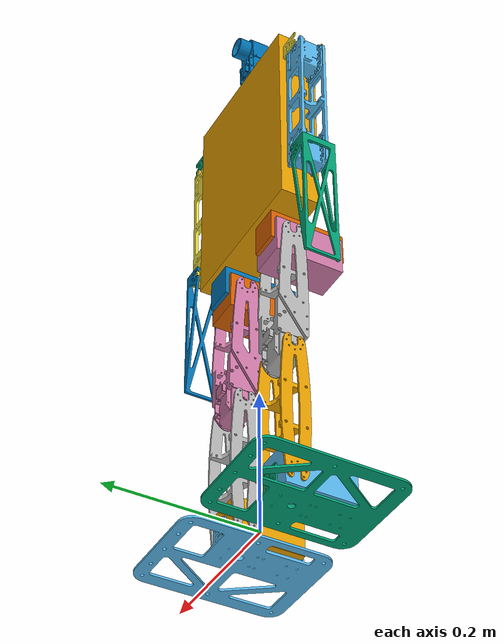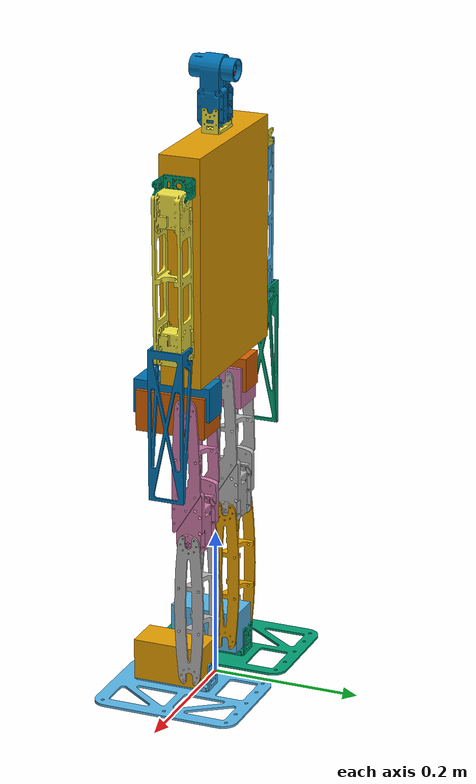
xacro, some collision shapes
<?xml version="1.0" ?>
<robot name="BogoBot" xmlns:xacro="http://www.ros.org/wiki/xacro">
    <xacro:include filename="$(find humanoide_gazebo)/urdf/material.xacro" />
    <xacro:include filename="$(find humanoide_gazebo)/urdf/parameters.xacro" />
    <xacro:include filename="$(find humanoide_gazebo)/urdf/humanoide_meshes.xacro"/>
    <xacro:include filename="$(find humanoide_gazebo)/urdf/motores.xacro" />
    <!--Piezas-->

    <!--Link Torso-->
    <xacro:base_link name="link_torso" x = "0" y = "0" z = "0.59" r = "0" p = "0" yaw = "${PI/2}"
    x_vis = "0.0" y_vis = "0.11" z_vis = "0.44" mesh = "${torax}"/>

    <!--Link Brazo izquierdo-->
    <xacro:brazo name="link_brazo_izquierdo" x = "0" y = "0" z = "-0.105" r = "0.185" p = "0" yaw = "-${PI/2}"
    x_vis = "0.13" y_vis = "0.1735" z_vis = "0" mesh = "${bicep}"/>
    <!--Link palma izquierdo-->
    <xacro:palma name="link_palma_izquierdo" x = "0" y = "0" z = "-0.09" r = "${PI/2}" p = "0" yaw = "${-PI/2}"
     x_vis = "0.005" y_vis = "0.0" z_vis = "-0.02" mesh = "${palma}"/>
    <!--Link Brazo derecho-->
    <xacro:brazo name="link_brazo_derecho" x = "0" y = "0" z = "-0.105" r = "0.185" p = "0" yaw = "${PI/2}"
    x_vis = "-0.13" y_vis = "-0.1735" z_vis = "0" mesh = "${bicep}"/>
    <!--Link palma derecho-->
    <xacro:palma name="link_palma_derecho" x = "0" y = "0" z = "-0.09" r = "${PI/2}" p = "0" yaw = "${PI/2}"
     x_vis = "-0.005" y_vis = "0.0" z_vis = "-0.02" mesh = "${palma}"/>

    <!--Link metal_pierna_izquierda-->
    <xacro:metal_pierna name="link_metal_pierna_izquierda" x = "0" y = "-0.02625" z = "-0.0325" r = "0" p = "0" yaw = "0"/>
    <!--Link servos_pierna_izquierda-->
    <xacro:servos_muslo name="link_servos_pierna_izquierda" x = "0" y = "0" z = "-0.02" r = "0" p = "0" yaw = "0"/>
    <!--Link muslo_pierna_izquierda-->
    <xacro:pieza_pierna_sup name="link_muslo_pierna_izquierda" x = "0" y = "0" z = "-0.11" r = "0.13" p = "-0.13" yaw = "${-PI/2}"
    x_vis = "-0.0775" y_vis = "-0.0075" z_vis = "-0.565" mesh = "${muslo}"/>
    <!--Link rodilla_pierna_izquierda-->
    <xacro:pieza_pierna_inf name="link_rodilla_pierna_izquierda" x = "0" y = "0" z = "-0.09" r = "0" p = "0" yaw = "${-PI/2}"
    x_vis = "-0.1375" y_vis = "0.007" z_vis = "-0.22" mesh = "${pantorrilla}"/>
    <!--Link servos_tob_pierna_izquierda-->
    <xacro:servos_muslo name="link_servos_tob_pierna_izquierda" x = "0" y = "-0.02625" z = "-0.02" r = "0" p = "0" yaw = "0"/>
    <!--Link pie izq-->
    <xacro:pie name="link_pie_izq" x = "-0.03" y = "-0.025" z = "-0.03" x_in = "-0.03" y_in = "-0.025" z_in = "-0.03" r = "0" p = "0" yaw = "${PI/2}"
    x_vis = "0" y_vis = "-0.05125" z_vis = "-0.03" mesh = "${pie_izq}"/>
    <!--Link metal_hombro_izq-->
    <xacro:hombro name="link_hombro_izq" x = "-0.015" y = "0.0" z = "0.0" x_in = "-0.015" y_in = "0.0" z_in = "0.0"  r = "0" p = "0" yaw = "${-PI/2}"
    x_vis = "0.095" y_vis = "0.1735" z_vis = "0.0" mesh = "${hombro}"/>

    <!--Link metal_pierna_derecha-->
    <xacro:metal_pierna name="link_metal_pierna_derecha" x = "0" y = "-0.02625" z = "-0.0325" r = "0" p = "0" yaw = "0"/>
    <!--Link servos_pierna_derecha-->
    <xacro:servos_muslo name="link_servos_pierna_derecha" x = "0" y = "0" z = "-0.02" r = "0" p = "0" yaw = "0"/>
    <!--Link muslo_pierna_derecha-->
    <xacro:pieza_pierna_sup name="link_muslo_pierna_derecha" x = "0" y = "0" z = "-0.11" r = "0.13" p = "-0.13" yaw = "${-PI/2}"
    x_vis = "-0.0775" y_vis = "-0.0075" z_vis = "-0.565" mesh = "${muslo}"/>
    <!--Link rodilla_pierna_derecha-->
    <xacro:pieza_pierna_inf name="link_rodilla_pierna_derecha" x = "0" y = "0" z = "-0.09" r = "0" p = "0" yaw = "${-PI/2}"
     x_vis = "-0.1375" y_vis = "0.007" z_vis = "-0.22" mesh = "${pantorrilla}"/>
    <!--Link servos_tob_pierna_derecha-->
    <xacro:servos_muslo name="link_servos_tob_pierna_derecha" x = "0" y = "-0.02625" z = "-0.02" r = "0" p = "0" yaw = "0"/>
    <!--Link pie der-->
    <xacro:pie name="link_pie_der" x = "0.03" y = "-0.025" z = "-0.03" x_in = "0.03" y_in = "-0.025" z_in = "-0.03" r = "0" p = "0" yaw = "${PI/2}"
    x_vis = "0" y_vis = "-0.05125" z_vis = "-0.03" mesh = "${pie_der}"/>
    <!--Link metal_hombro_der-->
    <xacro:hombro name="link_hombro_der" x = "0.015" y = "0.0" z = "0.0" x_in = "0.015" y_in = "0.0" z_in = "0.0" r = "0" p = "0" yaw = "${PI/2}"
    x_vis = "-0.095" y_vis = "-0.1735" z_vis = "0.0" mesh = "${hombro}"/>

    <!--Link cuello-->
    <xacro:cuello name="link_cuello" x = "0.0" y = "0.0" z = "0.0" r = "${-PI/2}" p = "0" yaw = "0"
    x_vis = "-0.175" y_vis = "0" z_vis = "-0.1" mesh = "${hombro}"/>
    <!--Link cabeza-->
    <xacro:cabeza name="link_cabeza" x = "0.0" y = "0.0" z = "0.01" r = "0" p = "${(-PI/4)-0.2}" yaw = "${PI/2}"
    x_vis = "0" y_vis = "0.35" z_vis = "-0.085" mesh = "${cabeza}"/>

    <!--joints-->
    <!--Joint Torso - cuello-->
    <xacro:joint_revoluta name="q19"
     x = "0.0" y = "0.0" z = "0.75" parent = "link_torso"
     gx = "0" gy = "0" gz = "1"
     child = "link_cuello" effort = "2.5" velocity = "5.76"/>
     <!--Joint cuello - cabeza-->
    <xacro:joint_revoluta name="q20"
     x = "0.0" y = "0.0" z = "0.02" parent = "link_cuello"
     gx = "-1" gy = "0" gz = "0"
     child = "link_cabeza" effort = "2.5" velocity = "5.76"/>

    <!--Joint Torso - hombro izquierdo-->
    <xacro:joint_revoluta name="q13"
     x = "-0.11" y = "0.0" z = "0.7" parent = "link_torso"
     gx = "-1" gy = "0" gz = "0"
     child = "link_hombro_izq" effort = "2.5" velocity = "5.76"/>
    <!--joint hombro izquierdo - Brazo izquierdo-->
    <xacro:joint_revoluta name="q14"
     x = "-0.03" y = "0.0" z = "0.01" parent = "link_hombro_izq"
     gx = "0" gy = "-1" gz = "0"
     child = "link_brazo_izquierdo" effort = "2.5" velocity = "5.76"/>
     <!--joint Brazo izquierdo - palmal izquierdo-->
    <xacro:joint_revoluta name="q15"
     x = "0.0" y = "0.0" z = "-0.2" parent = "link_brazo_izquierdo"
     gx = "0" gy = "1" gz = "0"
     child = "link_palma_izquierdo" effort = "2.5" velocity = "5.76"/>

    <!--Joint Torso - hombro derecho-->
    <xacro:joint_revoluta name="q16"
     x = "0.11" y = "0.0" z = "0.7" parent = "link_torso"
     gx = "1" gy = "0" gz = "0"
     child = "link_hombro_der" effort = "2.5" velocity = "5.76"/>
    <!--joint hombro derecho - Brazo derecho-->
    <xacro:joint_revoluta name="q17"
     x = "0.03" y = "0.0" z = "0.01" parent = "link_hombro_der"
     gx = "0" gy = "-1" gz = "0"
     child = "link_brazo_derecho" effort = "2.5" velocity = "5.76"/>
     <!--joint Brazo derecho - palma derecho-->
    <xacro:joint_revoluta name="q18"
     x = "0.0" y = "0.0" z = "-0.2" parent = "link_brazo_derecho"
     gx = "0" gy = "1" gz = "0"
     child = "link_palma_derecho" effort = "2.5" velocity = "5.76"/>

    <!--Joint Torso - metal pierna izquierda X-->
    <joint name="q6" type="fixed">
        <origin rpy="0 0 0" xyz="-0.06 0.0 0.44" />
        <child link="link_metal_pierna_izquierda" />
        <parent link="link_torso" />
        <limit effort="8.4" lower="0" upper="${2*PI}" velocity="5.76"/>
    </joint>
    <!--Joint metal pierna izquierdo - servos pierna izquierda X-->
    <xacro:joint_revoluta name="q5"
     x = "0.0" y = "-0.02625" z = "-0.03" parent = "link_metal_pierna_izquierda"
     gx = "0" gy = "1" gz = "0"
     child = "link_servos_pierna_izquierda" effort = "8.4" velocity = "4.72"/>
     <!--Joint servos pierna izquierda - muslo izq-->
    <xacro:joint_revoluta name="q4"
     x = "0.0" y = "0.02" z = "0.01" parent = "link_servos_pierna_izquierda"
     gx = "-1" gy = "0" gz = "0"
     child = "link_muslo_pierna_izquierda" effort = "8.4" velocity = "4.72"/>
     <!--Joint muslo izq - rodilla izq-->
    <xacro:joint_revoluta name="q3"
     x = "0.0" y = "0.0" z = "-0.2" parent = "link_muslo_pierna_izquierda"
     gx = "-1" gy = "0" gz = "0"
     child = "link_rodilla_pierna_izquierda" effort = "8.4" velocity = "4.72"/>
     <!--Joint rodilla izq - tob_izq-->
    <xacro:joint_revoluta name="q2"
     x = "0.0" y = "-0.0" z = "-0.16" parent = "link_rodilla_pierna_izquierda"
     gx = "1" gy = "0" gz = "0"
     child = "link_servos_tob_pierna_izquierda" effort = "8.4" velocity = "4.72"/>
     <!--Joint tob_izq - pie izq-->
    <xacro:joint_revoluta name="q1"
     x = "0.0" y = "0.02625" z = "-0.025" parent = "link_servos_tob_pierna_izquierda"
     gx = "0" gy = "-1" gz = "0"
     child = "link_pie_izq" effort = "55" velocity = "4.72"/>

     <!--Joint Torso - metal pierna derechaX-->
    <joint name="q12" type="fixed">
        <origin rpy="0 0 0" xyz="0.06 0.0 0.44" />
        <child link="link_metal_pierna_derecha" />
        <parent link="link_torso" />
        <limit effort="8.4" lower="0" upper="${2*PI}" velocity="4.72"/>
    </joint>
    <!--Joint metal pierna derecha - servos pierna derecha X-->
    <xacro:joint_revoluta name="q11"
     x = "0.0" y = "-0.02625" z = "-0.03" parent = "link_metal_pierna_derecha"
     gx = "0" gy = "1" gz = "0"
     child = "link_servos_pierna_derecha" effort = "8.4" velocity = "4.72"/>
     <!--Joint servos pierna derecha - muslo der-->
    <xacro:joint_revoluta name="q10"
     x = "0.0" y = "0.02" z = "0.01" parent = "link_servos_pierna_derecha"
     gx = "1" gy = "0" gz = "0"
     child = "link_muslo_pierna_derecha" effort = "8.4" velocity = "4.72"/>
     <!--Joint muslo der - rodilla der-->
    <xacro:joint_revoluta name="q9"
     x = "0.0" y = "0.0" z = "-0.2" parent = "link_muslo_pierna_derecha"
     gx = "1" gy = "0" gz = "0"
     child = "link_rodilla_pierna_derecha" effort = "8.4" velocity = "4.72"/>
     <!--Joint rodilla der - tob_der-->
    <xacro:joint_revoluta name="q8"
     x = "0.0" y = "0.0" z = "-0.16" parent = "link_rodilla_pierna_derecha"
     gx = "-1" gy = "0" gz = "0"
     child = "link_servos_tob_pierna_derecha" effort = "8.4" velocity = "4.72"/>
     <!--Joint tob_der - pie der-->
    <xacro:joint_revoluta name="q7"
     x = "0.0" y = "0.02625" z = "-0.025" parent = "link_servos_tob_pierna_derecha"
     gx = "0" gy = "-1" gz = "0"
     child = "link_pie_der" effort = "8.4" velocity = "4.72"/>
    <!--Transmisiones-->
    <gazebo>
        <plugin name="gazebo_ros_control" filename="libgazebo_ros_control.so">
        <robotNamespace>/Bogobot_model</robotNamespace>
        </plugin>
    </gazebo>
    <xacro:MX_106T name = "q1_trans" motor_name = "motor_q1" joint_name = "q1"/>
    <xacro:MX_106T name = "q2_trans" motor_name = "motor_q2" joint_name = "q2"/>
    <xacro:MX_106T name = "q3_trans" motor_name = "motor_q3" joint_name = "q3"/>
    <xacro:MX_106T name = "q4_trans" motor_name = "motor_q4" joint_name = "q4"/>
    <xacro:MX_106T name = "q5_trans" motor_name = "motor_q5" joint_name = "q5"/>
    <xacro:MX_106T name = "q7_trans" motor_name = "motor_q7" joint_name = "q7"/>
    <xacro:MX_106T name = "q8_trans" motor_name = "motor_q8" joint_name = "q8"/>
    <xacro:MX_106T name = "q9_trans" motor_name = "motor_q9" joint_name = "q9"/>
    <xacro:MX_106T name = "q10_trans" motor_name = "motor_q10" joint_name = "q10"/>
    <xacro:MX_106T name = "q11_trans" motor_name = "motor_q11" joint_name = "q11"/>
    <xacro:MX_28T name = "q13_trans" motor_name = "motor_q13" joint_name = "q13"/>
    <xacro:MX_28T name = "q14_trans" motor_name = "motor_q14" joint_name = "q14"/>
    <xacro:MX_28T name = "q15_trans" motor_name = "motor_q15" joint_name = "q15"/>
    <xacro:MX_28T name = "q16_trans" motor_name = "motor_q16" joint_name = "q16"/>
    <xacro:MX_28T name = "q17_trans" motor_name = "motor_q17" joint_name = "q17"/>
    <xacro:MX_28T name = "q18_trans" motor_name = "motor_q18" joint_name = "q18"/>
    <xacro:MX_28T name = "q19_trans" motor_name = "motor_q19" joint_name = "q19"/>
    <xacro:MX_28T name = "q20_trans" motor_name = "motor_q20" joint_name = "q20"/>

    <joint name="camera_joint" type="fixed">
    <axis xyz="0 1 0" />
        <origin xyz="0.0 0.025 0.05" rpy="0 0 ${PI/2}"/>
        <parent link="link_cabeza"/>
        <child link="camera_link"/>
    </joint>

    <!-- Camera -->
    <link name="camera_link">
        <collision>
            <origin xyz="0 0 0" rpy="0 0 0"/>
            <geometry>
                <box size="0.005 0.005 0.005"/>
            </geometry>
        </collision>

        <visual>
            <origin xyz="0 0 0" rpy="0 0 0"/>
            <geometry>
                <box size="0.005 0.005 0.005"/>
            </geometry>
            <material name="red"/>
        </visual>

        <inertial>
            <mass value="1e-5" />
            <origin xyz="0 0 0" rpy="0 0 0"/>
            <inertia ixx="1e-6" ixy="0" ixz="0" iyy="1e-6" iyz="0" izz="1e-6" />
        </inertial>
    </link>
    <!--Todas estas partes estan en el xacro de humanoide_meshes-->
    <xacro:camera_cabeza name="camera_link"/>
    <xacro:IMU_torsro name="link_torso"/>

</robot>

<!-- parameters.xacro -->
<robot xmlns:xacro="http://www.ros.org/wiki/xacro">

<!--parameters for gazebo properties-->
<xacro:property name="PI" value="3.1415926535897931"/>
<xacro:property name="pie_izq"  value="package://humanoide_gazebo/meshes/pie_izquierdo_AllCATPart.stl" />
<xacro:property name="pie_der"  value="package://humanoide_gazebo/meshes/pie_derecho_AllCATPart.stl" />
<xacro:property name="muslo"  value="package://humanoide_gazebo/meshes/muslo_AllCATPart.stl" />
<xacro:property name="pantorrilla"  value="package://humanoide_gazebo/meshes/pantorrilla_AllCATPart.stl" />
<xacro:property name="tobillo"  value="package://humanoide_gazebo/meshes/tobillo_AllCATPart.stl" />
<xacro:property name="torax"  value="package://humanoide_gazebo/meshes/torax_AllCATPart.stl"/>
<xacro:property name="hombro"  value="package://humanoide_gazebo/meshes/hombro_AllCATPart.stl" />
<xacro:property name="bicep"  value="package://humanoide_gazebo/meshes/biceps_AllCATPart.stl" />
<xacro:property name="palma"  value="package://humanoide_gazebo/meshes/palma.stl" />
<xacro:property name="cabeza"  value="package://humanoide_gazebo/meshes/cabeza_AllCATPart.stl" />

</robot>

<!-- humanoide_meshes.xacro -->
<robot xmlns:xacro="http://www.ros.org/wiki/xacro">
    <!--Aqui declaramos los macros de las diferentes partes del robot-->
    <xacro:macro name="base_link" params="name x y z r p yaw x_vis y_vis z_vis mesh">
        <link name="${name}">
            <inertial>
                <mass value="3.928" />
                <origin xyz="${x} ${y} ${z}" rpy="0 0 0" />
                <inertia ixx="0.03045018333" ixy="0" ixz="0" iyy="0.0453029" iyz="0" izz="0.01683311667"/>
            </inertial>

            <collision>
                <origin xyz="${x} ${y} ${z}" rpy="0 0 0" />
                <geometry>
                    <box size="0.22 0.055 0.3"/>
                </geometry>
            </collision>
            <visual>
                <origin xyz="${x_vis} ${y_vis} ${z_vis}" rpy="${r} ${p} ${yaw}" />
                <geometry>
                    <!--box size="0.22 0.055 0.3"/-->
                    <mesh filename="${mesh}" scale = "0.001 0.001 0.001"/>
                </geometry>
            </visual>
        </link>
    </xacro:macro>
    <xacro:macro name="brazo" params="name x y z r p yaw x_vis y_vis z_vis mesh">
        <link name="${name}">
            <inertial>
                <mass value="0.248" />
                <origin xyz="0 0 -0.11" rpy="0 0 0" />
                <inertia ixx="0.001033333333" ixy="0" ixz="0" iyy="0.001033333333" iyz="0" izz="0.00006613333333"/>
            </inertial>
            <collision>
                <origin xyz="${x} ${y} ${z}" rpy="0 0 0" />
                <geometry>
                    <box size="0.04 0.04 0.22"/>
                </geometry>
            </collision>
            <visual>
                <origin xyz="${x_vis} ${y_vis} ${z_vis}" rpy="${r} ${p} ${yaw}" />
                <geometry>
                    <mesh filename="${mesh}" scale = "0.001 0.001 0.001"/>
                    <!--mesh filename="package://robot_description/meshes/wheel.stl"/-->
                </geometry>
            </visual>
        </link>
    </xacro:macro>
    <xacro:macro name="palma" params="name x y z r p yaw x_vis y_vis z_vis mesh">
        <link name="${name}">
            <inertial>
                <mass value="0.062" />
                <origin xyz="0 0 -0.11" rpy="0 0 0" />
                <inertia ixx="0.0002190718333" ixy="0" ixz="0" iyy="0.0002119573333" iyz="0" izz="0.00001769583333"/>
            </inertial>
            <collision>
                <origin xyz="${x} ${y} ${z}" rpy="0 0 0" />
                <geometry>
                    <box size="0.032 0.049 0.2"/>
                </geometry>
            </collision>
            <visual>
                <origin xyz="${x_vis} ${y_vis} ${z_vis}" rpy="${r} ${p} ${yaw}" />
                <geometry>
                    <mesh filename="${mesh}" scale = "0.001 0.001 0.001"/>
                    <!--mesh filename="package://robot_description/meshes/wheel.stl"/-->
                </geometry>
            </visual>
        </link>
    </xacro:macro>
    <xacro:macro name="metal_pierna" params="name x y z r p yaw">
        <link name="${name}">
            <inertial>
                <mass value="0.028" />
                <origin xyz="0 -0.02625 -0.0325" rpy="0 0 0" />
                <inertia ixx="0.00003045" ixy="0" ixz="0" iyy="0.000008458333333" iyz="0" izz="0.00002945833333"/>
            </inertial>
            <collision>
                <origin xyz="${x} ${y} ${z}" rpy="${r} ${p} ${yaw}" />
                <geometry>
                    <box size="0.04 0.105 0.045"/>
                </geometry>
            </collision>
            <visual>
                <origin xyz="${x} ${y} ${z}" rpy="${r} ${p} ${yaw}" />
                <geometry>
                    <box size="0.04 0.105 0.045"/>
                    <!--mesh filename="package://robot_description/meshes/wheel.stl"/-->
                </geometry>
            </visual>
        </link>
    </xacro:macro>
    <xacro:macro name="servos_muslo" params="name x y z r p yaw">
        <link name="${name}">
            <inertial>
                <mass value="0.306" />
                <origin xyz="0 0 -0.02" rpy="0 0 0" />
                <inertia ixx="0.000307275" ixy="0" ixz="0" iyy="0.0001408875" iyz="0" izz="0.0002938875"/>
            </inertial>
            <collision>
                <origin xyz="${x} ${y} ${z}" rpy="${r} ${p} ${yaw}" />
                <geometry>
                    <box size="0.05 0.095 0.055"/>
                </geometry>
            </collision>
            <visual>
                <origin xyz="${x} ${y} ${z}" rpy="${r} ${p} ${yaw}" />
                <geometry>
                    <box size="0.05 0.095 0.055"/>
                    <!--mesh filename="package://robot_description/meshes/wheel.stl"/-->
                </geometry>
            </visual>
        </link>
    </xacro:macro>
    <xacro:macro name="pieza_pierna_sup" params="name x y z r p yaw x_vis y_vis z_vis mesh">
        <link name="${name}">
            <inertial>
                <mass value="0.37" />
                <origin xyz="0 0 -0.21" rpy="0 0 0" />
                <inertia ixx="0.005241666667" ixy="0" ixz="0" iyy="0.005241666667" iyz="0" izz="0.003798666667"/>
            </inertial>
            <collision>
                <origin xyz="${x} ${y} ${z}" rpy="0 0 0" />
                <geometry>
                    <box size="0.04 0.04 0.22"/>
                </geometry>
            </collision>
            <visual>
                <origin xyz="${x_vis} ${y_vis} ${z_vis}" rpy="${r} ${p} ${yaw}" />
                <geometry>
                    <mesh filename="${mesh}" scale = "0.001 0.001 0.001"/>
                </geometry>
            </visual>
        </link>
    </xacro:macro>
    <xacro:macro name="pieza_pierna_inf" params="name x y z r p yaw x_vis y_vis z_vis mesh">
        <link name="${name}">
            <inertial>
                <mass value="0.35" />
                <origin xyz="0 0 -0.11" rpy="0 0 0" />
                <inertia ixx="0.001458333333" ixy="0" ixz="0" iyy="0.001458333333" iyz="0" izz="0.00009333333333"/>
            </inertial>
            <collision>
                <origin xyz="${x} ${y} ${z}" rpy="0 0 0" />
                <geometry>
                    <box size="0.04 0.04 0.22"/>
                </geometry>
            </collision>
            <visual>
                <origin xyz="${x_vis} ${y_vis} ${z_vis}" rpy="${r} ${p} ${yaw}" />
                <geometry>
                    <mesh filename="${mesh}" scale = "0.001 0.001 0.001"/>
                </geometry>
            </visual>
        </link>
    </xacro:macro>
    <xacro:macro name="pie" params="name x y z x_in y_in z_in r p yaw x_vis y_vis z_vis mesh">
        <link name="${name}">
            <inertial>
                <mass value="0.2" />
                <origin xyz="${x_in} ${y_in} ${z_in}" rpy="0 0 0" />
                <inertia ixx="0.0006683333333" ixy="0" ixz="0" iyy="0.0003766666667" iyz="0" izz="0.001041666667"/>
            </inertial>
            <collision>
                <origin xyz="${x} ${y} ${z}" rpy="0 0 0" />
                <geometry>
                    <box size="0.15 0.2 0.01"/>
                </geometry>
            </collision>
            <visual>
                <origin xyz="${x_vis} ${y_vis} ${z_vis}" rpy="${r} ${p} ${yaw}" />
                <geometry>
                    <mesh filename="${mesh}" scale = "0.001 0.001 0.001"/>
                </geometry>
            </visual>
        </link>
    </xacro:macro>
    <xacro:macro name="hombro" params="name x y z x_in y_in z_in r p yaw x_vis y_vis z_vis mesh">
        <link name="${name}">
            <inertial>
                <mass value="0.075" />
                <origin xyz="${x_in} ${y_in} ${z_in}" rpy="0 0 0" />
                <inertia ixx="0.000018125" ixy="0" ixz="0" iyy="0.000008125" iyz="0" izz="0.0000212585"/>
            </inertial>
            <collision>
                <origin xyz="${x} ${y} ${z}" rpy="0 0 0" />
                <geometry>
                    <box size="0.03 0.05 0.02"/>
                </geometry>
            </collision>
            <visual>
                <origin xyz="${x_vis} ${y_vis} ${z_vis}" rpy="${r} ${p} ${yaw}" />
                <geometry>
                    <mesh filename="${hombro}" scale = "0.001 0.001 0.001"/>
                </geometry>
            </visual>
        </link>
    </xacro:macro>
    <xacro:macro name="cuello" params="name x y z r p yaw x_vis y_vis z_vis mesh">
        <link name="${name}">
            <inertial>
                <mass value="0.075" />
                <origin xyz="0 0 0" rpy="0 0 0" />
                <inertia ixx="0.000018125" ixy="0" ixz="0" iyy="0.000008125" iyz="0" izz="0.0000212585"/><inertia ixx="0.002526666666667" ixy="0" ixz="0" iyy="0.002526666666667" iyz="0" izz="0.005"/>
            </inertial>
            <collision>
                <origin xyz="${x} ${y} ${z}" rpy="0 0 ${PI/2}" />
                <geometry>
                    <box size="0.03 0.05 0.02"/>
                </geometry>
            </collision>
            <visual>
                <origin xyz="${x_vis} ${y_vis} ${z_vis}" rpy="${r} ${p} ${yaw}" />
                <geometry>
                    <mesh filename="${hombro}" scale = "0.001 0.001 0.001"/>
                </geometry>
            </visual>
        </link>
    </xacro:macro>
    <xacro:macro name="cabeza" params="name x y z r p yaw x_vis y_vis z_vis mesh">
        <link name="${name}">
            <inertial>
                <mass value="0.186" />
                <origin xyz="${x} ${y} ${z}" rpy="0 0 0" />
                <inertia ixx="0.0018042" ixy="0" ixz="0" iyy="0.00173445" iyz="0" izz="0.00052545"/>
            </inertial>
            <collision>
                <origin xyz="0 0 0.01" rpy="0 0 ${PI/2}" />
                <geometry>
                    <box size="0.04 0.035 0.09"/>
                </geometry>
            </collision>
            <visual>
                <origin xyz="${x_vis} ${y_vis} ${z_vis}" rpy="${r} ${p} ${yaw}" />
                <geometry>
                    <mesh filename="${mesh}" scale = "0.001 0.001 0.001"/>
                </geometry>
            </visual>
        </link>
    </xacro:macro>
    <xacro:macro name="joint_revoluta" params="name x y z gx gy gz parent child effort velocity">
        <joint name="${name}" type="revolute">
            <origin rpy="0 0 0" xyz="${x} ${y} ${z}" />
            <child link="${child}" />
            <parent link="${parent}" />
            <axis rpy="0 0 0" xyz="${gx} ${gy} ${gz}" />
            <limit effort="${effort}" lower="${-2*PI}" upper="${2*PI}" velocity="${velocity}"/>
        </joint>
    </xacro:macro>
    <!-- ROS Control plugin for Gazebo -->
    <xacro:macro name="camera_cabeza" params="name">
        <gazebo reference="${name}">
            <sensor type="camera" name="camera1">
            <update_rate>30.0</update_rate>
            <camera name="head">
                <horizontal_fov>1.3962634</horizontal_fov>
                <image>
                <width>1280</width>
                <height>720</height>
                <format>R8G8B8</format>
                </image>
                <clip>
                <near>0.02</near>
                <far>300</far>
                </clip>
                <noise>
                <type>gaussian</type>
                <mean>0.0</mean>
                <stddev>0.007</stddev>
                </noise>
            </camera>
            <plugin name="camera_controller" filename="libgazebo_ros_camera.so">
                <alwaysOn>true</alwaysOn>
                <updateRate>0.0</updateRate>
                <cameraName>Bogobot_model/camera1</cameraName>
                <imageTopicName>image_raw</imageTopicName>
                <cameraInfoTopicName>camera_info</cameraInfoTopicName>
                <frameName>camera_link</frameName>
                <hackBaseline>0.07</hackBaseline>
                <distortionK1>0.0</distortionK1>
                <distortionK2>0.0</distortionK2>
                <distortionK3>0.0</distortionK3>
                <distortionT1>0.0</distortionT1>
                <distortionT2>0.0</distortionT2>
            </plugin>
            </sensor>
        </gazebo>
    </xacro:macro>

    <xacro:macro name="IMU_torsro" params="name">
        <gazebo reference="${name}">
            <gravity>true</gravity>
            <sensor name="imu_sensor" type="imu">
            <always_on>true</always_on>
            <update_rate>100</update_rate>
            <visualize>true</visualize>
            <topic>__default_topic__</topic>
            <plugin filename="libgazebo_ros_imu_sensor.so" name="imu_plugin">
                <topicName>imu</topicName>
                <bodyName>link_torso</bodyName>
                <updateRateHZ>10.0</updateRateHZ>
                <gaussianNoise>0.0</gaussianNoise>
                <xyzOffset>0 0 0</xyzOffset>
                <rpyOffset>0 0 0</rpyOffset>
                <frameName>link_torso</frameName>
                <initialOrientationAsReference>false</initialOrientationAsReference>
            </plugin>
            <pose>0 0 0 0 0 0</pose>
            </sensor>
        </gazebo>
    </xacro:macro>

</robot>
